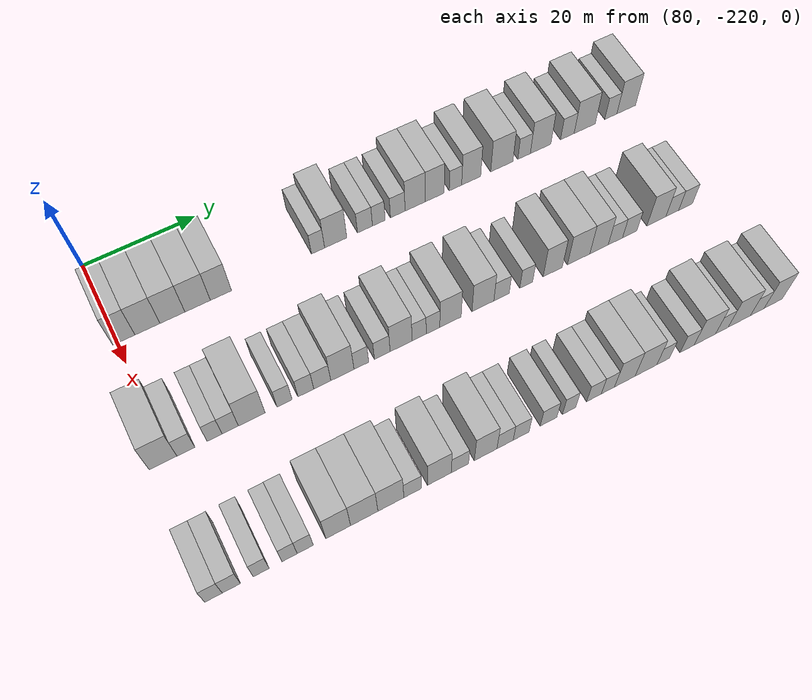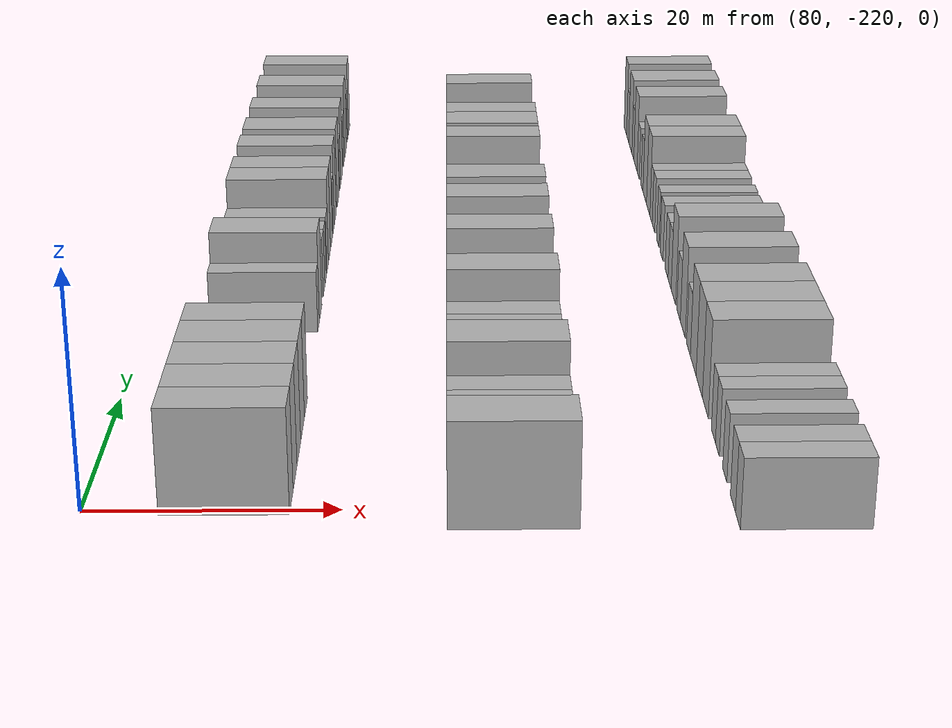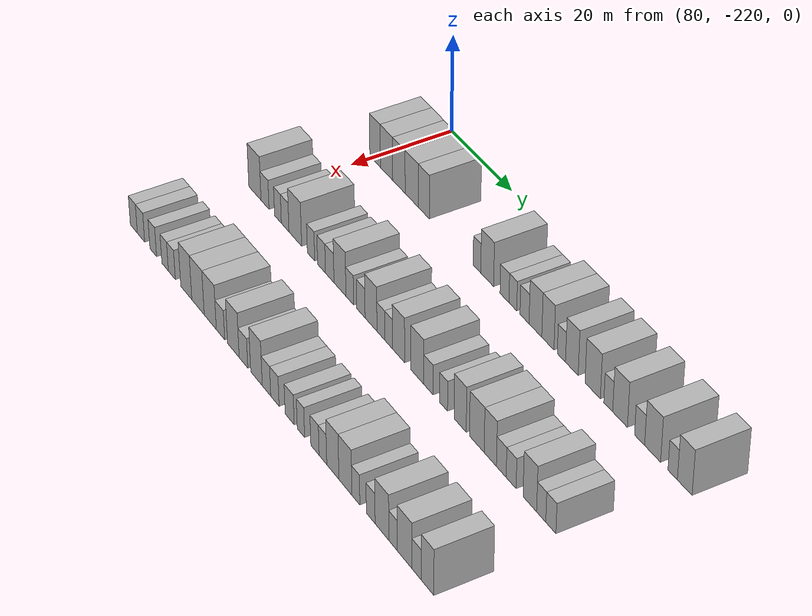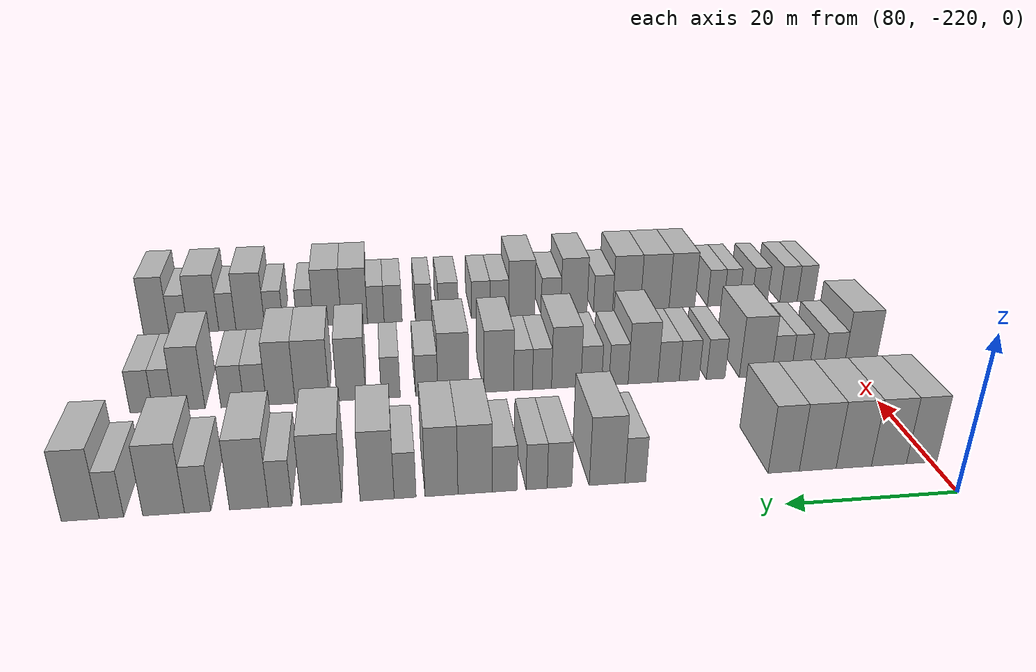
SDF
<sdf version="1.6">
 <world name="default">
  <model name="building_597">
   <static>1</static>
   <pose>91.0000 -218.8001 0 0.000000 0.000000 0.000000</pose>
   <link name="link">
    <pose>0 0 4.50 0 0 0</pose>
    <collision name="collision"><geometry><box><size>10.0000 3.7605 9.0000</size></box></geometry></collision>
    <visual name="visual">
     <cast_shadows>0</cast_shadows>
     <geometry><box><size>10.0000 3.7605 9.0000</size></box></geometry>
     <material>
      <script>
       <uri>model://HANNAS_wall/materials/scripts</uri>
       <uri>model://HANNAS_wall/materials/textures</uri>
       <name>vrc/HANNAS_wall</name>
      </script>
     </material>
    </visual>
   </link>
  </model>
  <model name="building_598">
   <static>1</static>
   <pose>91.0000 -214.7804 0 0.000000 0.000000 0.000000</pose>
   <link name="link">
    <pose>0 0 4.50 0 0 0</pose>
    <collision name="collision"><geometry><box><size>10.0000 4.2788 9.0000</size></box></geometry></collision>
    <visual name="visual">
     <cast_shadows>0</cast_shadows>
     <geometry><box><size>10.0000 4.2788 9.0000</size></box></geometry>
     <material>
      <script>
       <uri>model://HANNAS_wall/materials/scripts</uri>
       <uri>model://HANNAS_wall/materials/textures</uri>
       <name>vrc/HANNAS_wall</name>
      </script>
     </material>
    </visual>
   </link>
  </model>
  <model name="building_599">
   <static>1</static>
   <pose>91.0000 -210.4923 0 0.000000 0.000000 0.000000</pose>
   <link name="link">
    <pose>0 0 4.50 0 0 0</pose>
    <collision name="collision"><geometry><box><size>10.0000 4.2975 9.0000</size></box></geometry></collision>
    <visual name="visual">
     <cast_shadows>0</cast_shadows>
     <geometry><box><size>10.0000 4.2975 9.0000</size></box></geometry>
     <material>
      <script>
       <uri>model://HANNAS_wall/materials/scripts</uri>
       <uri>model://HANNAS_wall/materials/textures</uri>
       <name>vrc/HANNAS_wall</name>
      </script>
     </material>
    </visual>
   </link>
  </model>
  <model name="building_600">
   <static>1</static>
   <pose>91.0000 -206.1221 0 0.000000 0.000000 0.000000</pose>
   <link name="link">
    <pose>0 0 4.50 0 0 0</pose>
    <collision name="collision"><geometry><box><size>10.0000 4.4429 9.0000</size></box></geometry></collision>
    <visual name="visual">
     <cast_shadows>0</cast_shadows>
     <geometry><box><size>10.0000 4.4429 9.0000</size></box></geometry>
     <material>
      <script>
       <uri>model://HANNAS_wall/materials/scripts</uri>
       <uri>model://HANNAS_wall/materials/textures</uri>
       <name>vrc/HANNAS_wall</name>
      </script>
     </material>
    </visual>
   </link>
  </model>
  <model name="building_601">
   <static>1</static>
   <pose>91.0000 -202.0308 0 0.000000 0.000000 0.000000</pose>
   <link name="link">
    <pose>0 0 4.50 0 0 0</pose>
    <collision name="collision"><geometry><box><size>10.0000 3.7395 9.0000</size></box></geometry></collision>
    <visual name="visual">
     <cast_shadows>0</cast_shadows>
     <geometry><box><size>10.0000 3.7395 9.0000</size></box></geometry>
     <material>
      <script>
       <uri>model://HANNAS_wall/materials/scripts</uri>
       <uri>model://HANNAS_wall/materials/textures</uri>
       <name>vrc/HANNAS_wall</name>
      </script>
     </material>
    </visual>
   </link>
  </model>
  <model name="building_602">
   <static>1</static>
   <pose>91.0000 -184.5049 0 0.000000 0.000000 0.000000</pose>
   <link name="link">
    <pose>0 0 3.00 0 0 0</pose>
    <collision name="collision"><geometry><box><size>10.0000 2.4375 6.0000</size></box></geometry></collision>
    <visual name="visual">
     <cast_shadows>0</cast_shadows>
     <geometry><box><size>10.0000 2.4375 6.0000</size></box></geometry>
     <material>
      <script>
       <uri>model://HANNAS_wall/materials/scripts</uri>
       <uri>model://HANNAS_wall/materials/textures</uri>
       <name>vrc/HANNAS_wall</name>
      </script>
     </material>
    </visual>
   </link>
  </model>
  <model name="building_603">
   <static>1</static>
   <pose>91.0000 -181.2316 0 0.000000 0.000000 0.000000</pose>
   <link name="link">
    <pose>0 0 4.50 0 0 0</pose>
    <collision name="collision"><geometry><box><size>10.0000 4.1092 9.0000</size></box></geometry></collision>
    <visual name="visual">
     <cast_shadows>0</cast_shadows>
     <geometry><box><size>10.0000 4.1092 9.0000</size></box></geometry>
     <material>
      <script>
       <uri>model://HANNAS_wall/materials/scripts</uri>
       <uri>model://HANNAS_wall/materials/textures</uri>
       <name>vrc/HANNAS_wall</name>
      </script>
     </material>
    </visual>
   </link>
  </model>
  <model name="building_604">
   <static>1</static>
   <pose>91.0000 -175.7682 0 0.000000 0.000000 0.000000</pose>
   <link name="link">
    <pose>0 0 3.00 0 0 0</pose>
    <collision name="collision"><geometry><box><size>10.0000 2.8176 6.0000</size></box></geometry></collision>
    <visual name="visual">
     <cast_shadows>0</cast_shadows>
     <geometry><box><size>10.0000 2.8176 6.0000</size></box></geometry>
     <material>
      <script>
       <uri>model://HANNAS_wall/materials/scripts</uri>
       <uri>model://HANNAS_wall/materials/textures</uri>
       <name>vrc/HANNAS_wall</name>
      </script>
     </material>
    </visual>
   </link>
  </model>
  <model name="building_605">
   <static>1</static>
   <pose>91.0000 -173.1566 0 0.000000 0.000000 0.000000</pose>
   <link name="link">
    <pose>0 0 3.00 0 0 0</pose>
    <collision name="collision"><geometry><box><size>10.0000 2.4055 6.0000</size></box></geometry></collision>
    <visual name="visual">
     <cast_shadows>0</cast_shadows>
     <geometry><box><size>10.0000 2.4055 6.0000</size></box></geometry>
     <material>
      <script>
       <uri>model://HANNAS_wall/materials/scripts</uri>
       <uri>model://HANNAS_wall/materials/textures</uri>
       <name>vrc/HANNAS_wall</name>
      </script>
     </material>
    </visual>
   </link>
  </model>
  <model name="building_606">
   <static>1</static>
   <pose>91.0000 -169.5501 0 0.000000 0.000000 0.000000</pose>
   <link name="link">
    <pose>0 0 3.00 0 0 0</pose>
    <collision name="collision"><geometry><box><size>10.0000 2.8075 6.0000</size></box></geometry></collision>
    <visual name="visual">
     <cast_shadows>0</cast_shadows>
     <geometry><box><size>10.0000 2.8075 6.0000</size></box></geometry>
     <material>
      <script>
       <uri>model://HANNAS_wall/materials/scripts</uri>
       <uri>model://HANNAS_wall/materials/textures</uri>
       <name>vrc/HANNAS_wall</name>
      </script>
     </material>
    </visual>
   </link>
  </model>
  <model name="building_607">
   <static>1</static>
   <pose>91.0000 -166.2001 0 0.000000 0.000000 0.000000</pose>
   <link name="link">
    <pose>0 0 4.50 0 0 0</pose>
    <collision name="collision"><geometry><box><size>10.0000 3.8927 9.0000</size></box></geometry></collision>
    <visual name="visual">
     <cast_shadows>0</cast_shadows>
     <geometry><box><size>10.0000 3.8927 9.0000</size></box></geometry>
     <material>
      <script>
       <uri>model://HANNAS_wall/materials/scripts</uri>
       <uri>model://HANNAS_wall/materials/textures</uri>
       <name>vrc/HANNAS_wall</name>
      </script>
     </material>
    </visual>
   </link>
  </model>
  <model name="building_608">
   <static>1</static>
   <pose>91.0000 -162.4164 0 0.000000 0.000000 0.000000</pose>
   <link name="link">
    <pose>0 0 4.50 0 0 0</pose>
    <collision name="collision"><geometry><box><size>10.0000 3.6747 9.0000</size></box></geometry></collision>
    <visual name="visual">
     <cast_shadows>0</cast_shadows>
     <geometry><box><size>10.0000 3.6747 9.0000</size></box></geometry>
     <material>
      <script>
       <uri>model://HANNAS_wall/materials/scripts</uri>
       <uri>model://HANNAS_wall/materials/textures</uri>
       <name>vrc/HANNAS_wall</name>
      </script>
     </material>
    </visual>
   </link>
  </model>
  <model name="building_609">
   <static>1</static>
   <pose>91.0000 -158.3615 0 0.000000 0.000000 0.000000</pose>
   <link name="link">
    <pose>0 0 3.00 0 0 0</pose>
    <collision name="collision"><geometry><box><size>10.0000 2.4351 6.0000</size></box></geometry></collision>
    <visual name="visual">
     <cast_shadows>0</cast_shadows>
     <geometry><box><size>10.0000 2.4351 6.0000</size></box></geometry>
     <material>
      <script>
       <uri>model://HANNAS_wall/materials/scripts</uri>
       <uri>model://HANNAS_wall/materials/textures</uri>
       <name>vrc/HANNAS_wall</name>
      </script>
     </material>
    </visual>
   </link>
  </model>
  <model name="building_610">
   <static>1</static>
   <pose>91.0000 -155.2636 0 0.000000 0.000000 0.000000</pose>
   <link name="link">
    <pose>0 0 4.50 0 0 0</pose>
    <collision name="collision"><geometry><box><size>10.0000 3.7607 9.0000</size></box></geometry></collision>
    <visual name="visual">
     <cast_shadows>0</cast_shadows>
     <geometry><box><size>10.0000 3.7607 9.0000</size></box></geometry>
     <material>
      <script>
       <uri>model://HANNAS_wall/materials/scripts</uri>
       <uri>model://HANNAS_wall/materials/textures</uri>
       <name>vrc/HANNAS_wall</name>
      </script>
     </material>
    </visual>
   </link>
  </model>
  <model name="building_611">
   <static>1</static>
   <pose>91.0000 -149.1546 0 0.000000 0.000000 0.000000</pose>
   <link name="link">
    <pose>0 0 4.50 0 0 0</pose>
    <collision name="collision"><geometry><box><size>10.0000 4.4574 9.0000</size></box></geometry></collision>
    <visual name="visual">
     <cast_shadows>0</cast_shadows>
     <geometry><box><size>10.0000 4.4574 9.0000</size></box></geometry>
     <material>
      <script>
       <uri>model://HANNAS_wall/materials/scripts</uri>
       <uri>model://HANNAS_wall/materials/textures</uri>
       <name>vrc/HANNAS_wall</name>
      </script>
     </material>
    </visual>
   </link>
  </model>
  <model name="building_612">
   <static>1</static>
   <pose>91.0000 -144.6528 0 0.000000 0.000000 0.000000</pose>
   <link name="link">
    <pose>0 0 3.00 0 0 0</pose>
    <collision name="collision"><geometry><box><size>10.0000 2.5461 6.0000</size></box></geometry></collision>
    <visual name="visual">
     <cast_shadows>0</cast_shadows>
     <geometry><box><size>10.0000 2.5461 6.0000</size></box></geometry>
     <material>
      <script>
       <uri>model://HANNAS_wall/materials/scripts</uri>
       <uri>model://HANNAS_wall/materials/textures</uri>
       <name>vrc/HANNAS_wall</name>
      </script>
     </material>
    </visual>
   </link>
  </model>
  <model name="building_613">
   <static>1</static>
   <pose>91.0000 -141.2833 0 0.000000 0.000000 0.000000</pose>
   <link name="link">
    <pose>0 0 4.50 0 0 0</pose>
    <collision name="collision"><geometry><box><size>10.0000 4.1930 9.0000</size></box></geometry></collision>
    <visual name="visual">
     <cast_shadows>0</cast_shadows>
     <geometry><box><size>10.0000 4.1930 9.0000</size></box></geometry>
     <material>
      <script>
       <uri>model://HANNAS_wall/materials/scripts</uri>
       <uri>model://HANNAS_wall/materials/textures</uri>
       <name>vrc/HANNAS_wall</name>
      </script>
     </material>
    </visual>
   </link>
  </model>
  <model name="building_614">
   <static>1</static>
   <pose>91.0000 -135.7788 0 0.000000 0.000000 0.000000</pose>
   <link name="link">
    <pose>0 0 3.00 0 0 0</pose>
    <collision name="collision"><geometry><box><size>10.0000 2.8159 6.0000</size></box></geometry></collision>
    <visual name="visual">
     <cast_shadows>0</cast_shadows>
     <geometry><box><size>10.0000 2.8159 6.0000</size></box></geometry>
     <material>
      <script>
       <uri>model://HANNAS_wall/materials/scripts</uri>
       <uri>model://HANNAS_wall/materials/textures</uri>
       <name>vrc/HANNAS_wall</name>
      </script>
     </material>
    </visual>
   </link>
  </model>
  <model name="building_615">
   <static>1</static>
   <pose>91.0000 -132.1601 0 0.000000 0.000000 0.000000</pose>
   <link name="link">
    <pose>0 0 4.50 0 0 0</pose>
    <collision name="collision"><geometry><box><size>10.0000 4.4215 9.0000</size></box></geometry></collision>
    <visual name="visual">
     <cast_shadows>0</cast_shadows>
     <geometry><box><size>10.0000 4.4215 9.0000</size></box></geometry>
     <material>
      <script>
       <uri>model://HANNAS_wall/materials/scripts</uri>
       <uri>model://HANNAS_wall/materials/textures</uri>
       <name>vrc/HANNAS_wall</name>
      </script>
     </material>
    </visual>
   </link>
  </model>
  <model name="building_616">
   <static>1</static>
   <pose>91.0000 -126.6657 0 0.000000 0.000000 0.000000</pose>
   <link name="link">
    <pose>0 0 3.00 0 0 0</pose>
    <collision name="collision"><geometry><box><size>10.0000 2.5673 6.0000</size></box></geometry></collision>
    <visual name="visual">
     <cast_shadows>0</cast_shadows>
     <geometry><box><size>10.0000 2.5673 6.0000</size></box></geometry>
     <material>
      <script>
       <uri>model://HANNAS_wall/materials/scripts</uri>
       <uri>model://HANNAS_wall/materials/textures</uri>
       <name>vrc/HANNAS_wall</name>
      </script>
     </material>
    </visual>
   </link>
  </model>
  <model name="building_617">
   <static>1</static>
   <pose>91.0000 -123.3949 0 0.000000 0.000000 0.000000</pose>
   <link name="link">
    <pose>0 0 4.50 0 0 0</pose>
    <collision name="collision"><geometry><box><size>10.0000 3.9744 9.0000</size></box></geometry></collision>
    <visual name="visual">
     <cast_shadows>0</cast_shadows>
     <geometry><box><size>10.0000 3.9744 9.0000</size></box></geometry>
     <material>
      <script>
       <uri>model://HANNAS_wall/materials/scripts</uri>
       <uri>model://HANNAS_wall/materials/textures</uri>
       <name>vrc/HANNAS_wall</name>
      </script>
     </material>
    </visual>
   </link>
  </model>
  <model name="building_782">
   <static>1</static>
   <pose>113.0000 -220.9377 0 0.000000 0.000000 0.000000</pose>
   <link name="link">
    <pose>0 0 4.50 0 0 0</pose>
    <collision name="collision"><geometry><box><size>10.0000 4.4725 9.0000</size></box></geometry></collision>
    <visual name="visual">
     <cast_shadows>0</cast_shadows>
     <geometry><box><size>10.0000 4.4725 9.0000</size></box></geometry>
     <material>
      <script>
       <uri>model://HANNAS_wall/materials/scripts</uri>
       <uri>model://HANNAS_wall/materials/textures</uri>
       <name>vrc/HANNAS_wall</name>
      </script>
     </material>
    </visual>
   </link>
  </model>
  <model name="building_783">
   <static>1</static>
   <pose>113.0000 -217.2346 0 0.000000 0.000000 0.000000</pose>
   <link name="link">
    <pose>0 0 3.00 0 0 0</pose>
    <collision name="collision"><geometry><box><size>10.0000 2.9338 6.0000</size></box></geometry></collision>
    <visual name="visual">
     <cast_shadows>0</cast_shadows>
     <geometry><box><size>10.0000 2.9338 6.0000</size></box></geometry>
     <material>
      <script>
       <uri>model://HANNAS_wall/materials/scripts</uri>
       <uri>model://HANNAS_wall/materials/textures</uri>
       <name>vrc/HANNAS_wall</name>
      </script>
     </material>
    </visual>
   </link>
  </model>
  <model name="building_784">
   <static>1</static>
   <pose>113.0000 -212.5410 0 0.000000 0.000000 0.000000</pose>
   <link name="link">
    <pose>0 0 3.00 0 0 0</pose>
    <collision name="collision"><geometry><box><size>10.0000 2.4534 6.0000</size></box></geometry></collision>
    <visual name="visual">
     <cast_shadows>0</cast_shadows>
     <geometry><box><size>10.0000 2.4534 6.0000</size></box></geometry>
     <material>
      <script>
       <uri>model://HANNAS_wall/materials/scripts</uri>
       <uri>model://HANNAS_wall/materials/textures</uri>
       <name>vrc/HANNAS_wall</name>
      </script>
     </material>
    </visual>
   </link>
  </model>
  <model name="building_785">
   <static>1</static>
   <pose>113.0000 -209.9526 0 0.000000 0.000000 0.000000</pose>
   <link name="link">
    <pose>0 0 3.00 0 0 0</pose>
    <collision name="collision"><geometry><box><size>10.0000 2.7233 6.0000</size></box></geometry></collision>
    <visual name="visual">
     <cast_shadows>0</cast_shadows>
     <geometry><box><size>10.0000 2.7233 6.0000</size></box></geometry>
     <material>
      <script>
       <uri>model://HANNAS_wall/materials/scripts</uri>
       <uri>model://HANNAS_wall/materials/textures</uri>
       <name>vrc/HANNAS_wall</name>
      </script>
     </material>
    </visual>
   </link>
  </model>
  <model name="building_786">
   <static>1</static>
   <pose>113.0000 -206.3439 0 0.000000 0.000000 0.000000</pose>
   <link name="link">
    <pose>0 0 4.50 0 0 0</pose>
    <collision name="collision"><geometry><box><size>10.0000 4.4943 9.0000</size></box></geometry></collision>
    <visual name="visual">
     <cast_shadows>0</cast_shadows>
     <geometry><box><size>10.0000 4.4943 9.0000</size></box></geometry>
     <material>
      <script>
       <uri>model://HANNAS_wall/materials/scripts</uri>
       <uri>model://HANNAS_wall/materials/textures</uri>
       <name>vrc/HANNAS_wall</name>
      </script>
     </material>
    </visual>
   </link>
  </model>
  <model name="building_787">
   <static>1</static>
   <pose>113.0000 -200.8114 0 0.000000 0.000000 0.000000</pose>
   <link name="link">
    <pose>0 0 3.00 0 0 0</pose>
    <collision name="collision"><geometry><box><size>10.0000 2.5706 6.0000</size></box></geometry></collision>
    <visual name="visual">
     <cast_shadows>0</cast_shadows>
     <geometry><box><size>10.0000 2.5706 6.0000</size></box></geometry>
     <material>
      <script>
       <uri>model://HANNAS_wall/materials/scripts</uri>
       <uri>model://HANNAS_wall/materials/textures</uri>
       <name>vrc/HANNAS_wall</name>
      </script>
     </material>
    </visual>
   </link>
  </model>
  <model name="building_788">
   <static>1</static>
   <pose>113.0000 -197.1657 0 0.000000 0.000000 0.000000</pose>
   <link name="link">
    <pose>0 0 3.00 0 0 0</pose>
    <collision name="collision"><geometry><box><size>10.0000 2.7208 6.0000</size></box></geometry></collision>
    <visual name="visual">
     <cast_shadows>0</cast_shadows>
     <geometry><box><size>10.0000 2.7208 6.0000</size></box></geometry>
     <material>
      <script>
       <uri>model://HANNAS_wall/materials/scripts</uri>
       <uri>model://HANNAS_wall/materials/textures</uri>
       <name>vrc/HANNAS_wall</name>
      </script>
     </material>
    </visual>
   </link>
  </model>
  <model name="building_789">
   <static>1</static>
   <pose>113.0000 -194.3358 0 0.000000 0.000000 0.000000</pose>
   <link name="link">
    <pose>0 0 3.00 0 0 0</pose>
    <collision name="collision"><geometry><box><size>10.0000 2.9390 6.0000</size></box></geometry></collision>
    <visual name="visual">
     <cast_shadows>0</cast_shadows>
     <geometry><box><size>10.0000 2.9390 6.0000</size></box></geometry>
     <material>
      <script>
       <uri>model://HANNAS_wall/materials/scripts</uri>
       <uri>model://HANNAS_wall/materials/textures</uri>
       <name>vrc/HANNAS_wall</name>
      </script>
     </material>
    </visual>
   </link>
  </model>
  <model name="building_790">
   <static>1</static>
   <pose>113.0000 -190.8423 0 0.000000 0.000000 0.000000</pose>
   <link name="link">
    <pose>0 0 4.50 0 0 0</pose>
    <collision name="collision"><geometry><box><size>10.0000 4.0480 9.0000</size></box></geometry></collision>
    <visual name="visual">
     <cast_shadows>0</cast_shadows>
     <geometry><box><size>10.0000 4.0480 9.0000</size></box></geometry>
     <material>
      <script>
       <uri>model://HANNAS_wall/materials/scripts</uri>
       <uri>model://HANNAS_wall/materials/textures</uri>
       <name>vrc/HANNAS_wall</name>
      </script>
     </material>
    </visual>
   </link>
  </model>
  <model name="building_791">
   <static>1</static>
   <pose>113.0000 -187.5196 0 0.000000 0.000000 0.000000</pose>
   <link name="link">
    <pose>0 0 3.00 0 0 0</pose>
    <collision name="collision"><geometry><box><size>10.0000 2.5975 6.0000</size></box></geometry></collision>
    <visual name="visual">
     <cast_shadows>0</cast_shadows>
     <geometry><box><size>10.0000 2.5975 6.0000</size></box></geometry>
     <material>
      <script>
       <uri>model://HANNAS_wall/materials/scripts</uri>
       <uri>model://HANNAS_wall/materials/textures</uri>
       <name>vrc/HANNAS_wall</name>
      </script>
     </material>
    </visual>
   </link>
  </model>
  <model name="building_792">
   <static>1</static>
   <pose>113.0000 -183.8251 0 0.000000 0.000000 0.000000</pose>
   <link name="link">
    <pose>0 0 3.00 0 0 0</pose>
    <collision name="collision"><geometry><box><size>10.0000 2.7914 6.0000</size></box></geometry></collision>
    <visual name="visual">
     <cast_shadows>0</cast_shadows>
     <geometry><box><size>10.0000 2.7914 6.0000</size></box></geometry>
     <material>
      <script>
       <uri>model://HANNAS_wall/materials/scripts</uri>
       <uri>model://HANNAS_wall/materials/textures</uri>
       <name>vrc/HANNAS_wall</name>
      </script>
     </material>
    </visual>
   </link>
  </model>
  <model name="building_793">
   <static>1</static>
   <pose>113.0000 -180.4602 0 0.000000 0.000000 0.000000</pose>
   <link name="link">
    <pose>0 0 4.50 0 0 0</pose>
    <collision name="collision"><geometry><box><size>10.0000 3.9384 9.0000</size></box></geometry></collision>
    <visual name="visual">
     <cast_shadows>0</cast_shadows>
     <geometry><box><size>10.0000 3.9384 9.0000</size></box></geometry>
     <material>
      <script>
       <uri>model://HANNAS_wall/materials/scripts</uri>
       <uri>model://HANNAS_wall/materials/textures</uri>
       <name>vrc/HANNAS_wall</name>
      </script>
     </material>
    </visual>
   </link>
  </model>
  <model name="building_794">
   <static>1</static>
   <pose>113.0000 -177.2183 0 0.000000 0.000000 0.000000</pose>
   <link name="link">
    <pose>0 0 3.00 0 0 0</pose>
    <collision name="collision"><geometry><box><size>10.0000 2.5454 6.0000</size></box></geometry></collision>
    <visual name="visual">
     <cast_shadows>0</cast_shadows>
     <geometry><box><size>10.0000 2.5454 6.0000</size></box></geometry>
     <material>
      <script>
       <uri>model://HANNAS_wall/materials/scripts</uri>
       <uri>model://HANNAS_wall/materials/textures</uri>
       <name>vrc/HANNAS_wall</name>
      </script>
     </material>
    </visual>
   </link>
  </model>
  <model name="building_795">
   <static>1</static>
   <pose>113.0000 -174.7041 0 0.000000 0.000000 0.000000</pose>
   <link name="link">
    <pose>0 0 3.00 0 0 0</pose>
    <collision name="collision"><geometry><box><size>10.0000 2.4831 6.0000</size></box></geometry></collision>
    <visual name="visual">
     <cast_shadows>0</cast_shadows>
     <geometry><box><size>10.0000 2.4831 6.0000</size></box></geometry>
     <material>
      <script>
       <uri>model://HANNAS_wall/materials/scripts</uri>
       <uri>model://HANNAS_wall/materials/textures</uri>
       <name>vrc/HANNAS_wall</name>
      </script>
     </material>
    </visual>
   </link>
  </model>
  <model name="building_796">
   <static>1</static>
   <pose>113.0000 -171.5022 0 0.000000 0.000000 0.000000</pose>
   <link name="link">
    <pose>0 0 4.50 0 0 0</pose>
    <collision name="collision"><geometry><box><size>10.0000 3.9207 9.0000</size></box></geometry></collision>
    <visual name="visual">
     <cast_shadows>0</cast_shadows>
     <geometry><box><size>10.0000 3.9207 9.0000</size></box></geometry>
     <material>
      <script>
       <uri>model://HANNAS_wall/materials/scripts</uri>
       <uri>model://HANNAS_wall/materials/textures</uri>
       <name>vrc/HANNAS_wall</name>
      </script>
     </material>
    </visual>
   </link>
  </model>
  <model name="building_797">
   <static>1</static>
   <pose>113.0000 -165.4991 0 0.000000 0.000000 0.000000</pose>
   <link name="link">
    <pose>0 0 4.50 0 0 0</pose>
    <collision name="collision"><geometry><box><size>10.0000 4.0855 9.0000</size></box></geometry></collision>
    <visual name="visual">
     <cast_shadows>0</cast_shadows>
     <geometry><box><size>10.0000 4.0855 9.0000</size></box></geometry>
     <material>
      <script>
       <uri>model://HANNAS_wall/materials/scripts</uri>
       <uri>model://HANNAS_wall/materials/textures</uri>
       <name>vrc/HANNAS_wall</name>
      </script>
     </material>
    </visual>
   </link>
  </model>
  <model name="building_798">
   <static>1</static>
   <pose>113.0000 -162.0102 0 0.000000 0.000000 0.000000</pose>
   <link name="link">
    <pose>0 0 3.00 0 0 0</pose>
    <collision name="collision"><geometry><box><size>10.0000 2.8923 6.0000</size></box></geometry></collision>
    <visual name="visual">
     <cast_shadows>0</cast_shadows>
     <geometry><box><size>10.0000 2.8923 6.0000</size></box></geometry>
     <material>
      <script>
       <uri>model://HANNAS_wall/materials/scripts</uri>
       <uri>model://HANNAS_wall/materials/textures</uri>
       <name>vrc/HANNAS_wall</name>
      </script>
     </material>
    </visual>
   </link>
  </model>
  <model name="building_799">
   <static>1</static>
   <pose>113.0000 -157.3421 0 0.000000 0.000000 0.000000</pose>
   <link name="link">
    <pose>0 0 3.00 0 0 0</pose>
    <collision name="collision"><geometry><box><size>10.0000 2.4440 6.0000</size></box></geometry></collision>
    <visual name="visual">
     <cast_shadows>0</cast_shadows>
     <geometry><box><size>10.0000 2.4440 6.0000</size></box></geometry>
     <material>
      <script>
       <uri>model://HANNAS_wall/materials/scripts</uri>
       <uri>model://HANNAS_wall/materials/textures</uri>
       <name>vrc/HANNAS_wall</name>
      </script>
     </material>
    </visual>
   </link>
  </model>
  <model name="building_800">
   <static>1</static>
   <pose>113.0000 -152.2723 0 0.000000 0.000000 0.000000</pose>
   <link name="link">
    <pose>0 0 4.50 0 0 0</pose>
    <collision name="collision"><geometry><box><size>10.0000 3.6954 9.0000</size></box></geometry></collision>
    <visual name="visual">
     <cast_shadows>0</cast_shadows>
     <geometry><box><size>10.0000 3.6954 9.0000</size></box></geometry>
     <material>
      <script>
       <uri>model://HANNAS_wall/materials/scripts</uri>
       <uri>model://HANNAS_wall/materials/textures</uri>
       <name>vrc/HANNAS_wall</name>
      </script>
     </material>
    </visual>
   </link>
  </model>
  <model name="building_801">
   <static>1</static>
   <pose>113.0000 -147.2356 0 0.000000 0.000000 0.000000</pose>
   <link name="link">
    <pose>0 0 4.50 0 0 0</pose>
    <collision name="collision"><geometry><box><size>10.0000 4.3780 9.0000</size></box></geometry></collision>
    <visual name="visual">
     <cast_shadows>0</cast_shadows>
     <geometry><box><size>10.0000 4.3780 9.0000</size></box></geometry>
     <material>
      <script>
       <uri>model://HANNAS_wall/materials/scripts</uri>
       <uri>model://HANNAS_wall/materials/textures</uri>
       <name>vrc/HANNAS_wall</name>
      </script>
     </material>
    </visual>
   </link>
  </model>
  <model name="building_802">
   <static>1</static>
   <pose>113.0000 -143.2328 0 0.000000 0.000000 0.000000</pose>
   <link name="link">
    <pose>0 0 4.50 0 0 0</pose>
    <collision name="collision"><geometry><box><size>10.0000 3.6276 9.0000</size></box></geometry></collision>
    <visual name="visual">
     <cast_shadows>0</cast_shadows>
     <geometry><box><size>10.0000 3.6276 9.0000</size></box></geometry>
     <material>
      <script>
       <uri>model://HANNAS_wall/materials/scripts</uri>
       <uri>model://HANNAS_wall/materials/textures</uri>
       <name>vrc/HANNAS_wall</name>
      </script>
     </material>
    </visual>
   </link>
  </model>
  <model name="building_803">
   <static>1</static>
   <pose>113.0000 -139.9974 0 0.000000 0.000000 0.000000</pose>
   <link name="link">
    <pose>0 0 3.00 0 0 0</pose>
    <collision name="collision"><geometry><box><size>10.0000 2.8433 6.0000</size></box></geometry></collision>
    <visual name="visual">
     <cast_shadows>0</cast_shadows>
     <geometry><box><size>10.0000 2.8433 6.0000</size></box></geometry>
     <material>
      <script>
       <uri>model://HANNAS_wall/materials/scripts</uri>
       <uri>model://HANNAS_wall/materials/textures</uri>
       <name>vrc/HANNAS_wall</name>
      </script>
     </material>
    </visual>
   </link>
  </model>
  <model name="building_804">
   <static>1</static>
   <pose>113.0000 -137.1305 0 0.000000 0.000000 0.000000</pose>
   <link name="link">
    <pose>0 0 3.00 0 0 0</pose>
    <collision name="collision"><geometry><box><size>10.0000 2.8905 6.0000</size></box></geometry></collision>
    <visual name="visual">
     <cast_shadows>0</cast_shadows>
     <geometry><box><size>10.0000 2.8905 6.0000</size></box></geometry>
     <material>
      <script>
       <uri>model://HANNAS_wall/materials/scripts</uri>
       <uri>model://HANNAS_wall/materials/textures</uri>
       <name>vrc/HANNAS_wall</name>
      </script>
     </material>
    </visual>
   </link>
  </model>
  <model name="building_805">
   <static>1</static>
   <pose>113.0000 -131.7530 0 0.000000 0.000000 0.000000</pose>
   <link name="link">
    <pose>0 0 4.50 0 0 0</pose>
    <collision name="collision"><geometry><box><size>10.0000 3.8644 9.0000</size></box></geometry></collision>
    <visual name="visual">
     <cast_shadows>0</cast_shadows>
     <geometry><box><size>10.0000 3.8644 9.0000</size></box></geometry>
     <material>
      <script>
       <uri>model://HANNAS_wall/materials/scripts</uri>
       <uri>model://HANNAS_wall/materials/textures</uri>
       <name>vrc/HANNAS_wall</name>
      </script>
     </material>
    </visual>
   </link>
  </model>
  <model name="building_806">
   <static>1</static>
   <pose>113.0000 -128.5218 0 0.000000 0.000000 0.000000</pose>
   <link name="link">
    <pose>0 0 3.00 0 0 0</pose>
    <collision name="collision"><geometry><box><size>10.0000 2.5981 6.0000</size></box></geometry></collision>
    <visual name="visual">
     <cast_shadows>0</cast_shadows>
     <geometry><box><size>10.0000 2.5981 6.0000</size></box></geometry>
     <material>
      <script>
       <uri>model://HANNAS_wall/materials/scripts</uri>
       <uri>model://HANNAS_wall/materials/textures</uri>
       <name>vrc/HANNAS_wall</name>
      </script>
     </material>
    </visual>
   </link>
  </model>
  <model name="building_807">
   <static>1</static>
   <pose>113.0000 -125.7999 0 0.000000 0.000000 0.000000</pose>
   <link name="link">
    <pose>0 0 3.00 0 0 0</pose>
    <collision name="collision"><geometry><box><size>10.0000 2.8458 6.0000</size></box></geometry></collision>
    <visual name="visual">
     <cast_shadows>0</cast_shadows>
     <geometry><box><size>10.0000 2.8458 6.0000</size></box></geometry>
     <material>
      <script>
       <uri>model://HANNAS_wall/materials/scripts</uri>
       <uri>model://HANNAS_wall/materials/textures</uri>
       <name>vrc/HANNAS_wall</name>
      </script>
     </material>
    </visual>
   </link>
  </model>
  <model name="building_967">
   <static>1</static>
   <pose>135.0000 -222.0774 0 0.000000 0.000000 0.000000</pose>
   <link name="link">
    <pose>0 0 3.00 0 0 0</pose>
    <collision name="collision"><geometry><box><size>10.0000 2.6899 6.0000</size></box></geometry></collision>
    <visual name="visual">
     <cast_shadows>0</cast_shadows>
     <geometry><box><size>10.0000 2.6899 6.0000</size></box></geometry>
     <material>
      <script>
       <uri>model://HANNAS_wall/materials/scripts</uri>
       <uri>model://HANNAS_wall/materials/textures</uri>
       <name>vrc/HANNAS_wall</name>
      </script>
     </material>
    </visual>
   </link>
  </model>
  <model name="building_968">
   <static>1</static>
   <pose>135.0000 -219.3258 0 0.000000 0.000000 0.000000</pose>
   <link name="link">
    <pose>0 0 3.00 0 0 0</pose>
    <collision name="collision"><geometry><box><size>10.0000 2.8134 6.0000</size></box></geometry></collision>
    <visual name="visual">
     <cast_shadows>0</cast_shadows>
     <geometry><box><size>10.0000 2.8134 6.0000</size></box></geometry>
     <material>
      <script>
       <uri>model://HANNAS_wall/materials/scripts</uri>
       <uri>model://HANNAS_wall/materials/textures</uri>
       <name>vrc/HANNAS_wall</name>
      </script>
     </material>
    </visual>
   </link>
  </model>
  <model name="building_969">
   <static>1</static>
   <pose>135.0000 -214.6667 0 0.000000 0.000000 0.000000</pose>
   <link name="link">
    <pose>0 0 3.00 0 0 0</pose>
    <collision name="collision"><geometry><box><size>10.0000 2.5046 6.0000</size></box></geometry></collision>
    <visual name="visual">
     <cast_shadows>0</cast_shadows>
     <geometry><box><size>10.0000 2.5046 6.0000</size></box></geometry>
     <material>
      <script>
       <uri>model://HANNAS_wall/materials/scripts</uri>
       <uri>model://HANNAS_wall/materials/textures</uri>
       <name>vrc/HANNAS_wall</name>
      </script>
     </material>
    </visual>
   </link>
  </model>
  <model name="building_970">
   <static>1</static>
   <pose>135.0000 -210.1974 0 0.000000 0.000000 0.000000</pose>
   <link name="link">
    <pose>0 0 3.00 0 0 0</pose>
    <collision name="collision"><geometry><box><size>10.0000 2.4340 6.0000</size></box></geometry></collision>
    <visual name="visual">
     <cast_shadows>0</cast_shadows>
     <geometry><box><size>10.0000 2.4340 6.0000</size></box></geometry>
     <material>
      <script>
       <uri>model://HANNAS_wall/materials/scripts</uri>
       <uri>model://HANNAS_wall/materials/textures</uri>
       <name>vrc/HANNAS_wall</name>
      </script>
     </material>
    </visual>
   </link>
  </model>
  <model name="building_971">
   <static>1</static>
   <pose>135.0000 -207.6898 0 0.000000 0.000000 0.000000</pose>
   <link name="link">
    <pose>0 0 3.00 0 0 0</pose>
    <collision name="collision"><geometry><box><size>10.0000 2.5814 6.0000</size></box></geometry></collision>
    <visual name="visual">
     <cast_shadows>0</cast_shadows>
     <geometry><box><size>10.0000 2.5814 6.0000</size></box></geometry>
     <material>
      <script>
       <uri>model://HANNAS_wall/materials/scripts</uri>
       <uri>model://HANNAS_wall/materials/textures</uri>
       <name>vrc/HANNAS_wall</name>
      </script>
     </material>
    </visual>
   </link>
  </model>
  <model name="building_972">
   <static>1</static>
   <pose>135.0000 -202.3773 0 0.000000 0.000000 0.000000</pose>
   <link name="link">
    <pose>0 0 4.50 0 0 0</pose>
    <collision name="collision"><geometry><box><size>10.0000 4.0435 9.0000</size></box></geometry></collision>
    <visual name="visual">
     <cast_shadows>0</cast_shadows>
     <geometry><box><size>10.0000 4.0435 9.0000</size></box></geometry>
     <material>
      <script>
       <uri>model://HANNAS_wall/materials/scripts</uri>
       <uri>model://HANNAS_wall/materials/textures</uri>
       <name>vrc/HANNAS_wall</name>
      </script>
     </material>
    </visual>
   </link>
  </model>
  <model name="building_973">
   <static>1</static>
   <pose>135.0000 -198.1146 0 0.000000 0.000000 0.000000</pose>
   <link name="link">
    <pose>0 0 4.50 0 0 0</pose>
    <collision name="collision"><geometry><box><size>10.0000 4.4820 9.0000</size></box></geometry></collision>
    <visual name="visual">
     <cast_shadows>0</cast_shadows>
     <geometry><box><size>10.0000 4.4820 9.0000</size></box></geometry>
     <material>
      <script>
       <uri>model://HANNAS_wall/materials/scripts</uri>
       <uri>model://HANNAS_wall/materials/textures</uri>
       <name>vrc/HANNAS_wall</name>
      </script>
     </material>
    </visual>
   </link>
  </model>
  <model name="building_974">
   <static>1</static>
   <pose>135.0000 -193.7147 0 0.000000 0.000000 0.000000</pose>
   <link name="link">
    <pose>0 0 4.50 0 0 0</pose>
    <collision name="collision"><geometry><box><size>10.0000 4.3178 9.0000</size></box></geometry></collision>
    <visual name="visual">
     <cast_shadows>0</cast_shadows>
     <geometry><box><size>10.0000 4.3178 9.0000</size></box></geometry>
     <material>
      <script>
       <uri>model://HANNAS_wall/materials/scripts</uri>
       <uri>model://HANNAS_wall/materials/textures</uri>
       <name>vrc/HANNAS_wall</name>
      </script>
     </material>
    </visual>
   </link>
  </model>
  <model name="building_975">
   <static>1</static>
   <pose>135.0000 -190.0713 0 0.000000 0.000000 0.000000</pose>
   <link name="link">
    <pose>0 0 3.00 0 0 0</pose>
    <collision name="collision"><geometry><box><size>10.0000 2.9689 6.0000</size></box></geometry></collision>
    <visual name="visual">
     <cast_shadows>0</cast_shadows>
     <geometry><box><size>10.0000 2.9689 6.0000</size></box></geometry>
     <material>
      <script>
       <uri>model://HANNAS_wall/materials/scripts</uri>
       <uri>model://HANNAS_wall/materials/textures</uri>
       <name>vrc/HANNAS_wall</name>
      </script>
     </material>
    </visual>
   </link>
  </model>
  <model name="building_976">
   <static>1</static>
   <pose>135.0000 -185.5662 0 0.000000 0.000000 0.000000</pose>
   <link name="link">
    <pose>0 0 4.50 0 0 0</pose>
    <collision name="collision"><geometry><box><size>10.0000 4.0414 9.0000</size></box></geometry></collision>
    <visual name="visual">
     <cast_shadows>0</cast_shadows>
     <geometry><box><size>10.0000 4.0414 9.0000</size></box></geometry>
     <material>
      <script>
       <uri>model://HANNAS_wall/materials/scripts</uri>
       <uri>model://HANNAS_wall/materials/textures</uri>
       <name>vrc/HANNAS_wall</name>
      </script>
     </material>
    </visual>
   </link>
  </model>
  <model name="building_977">
   <static>1</static>
   <pose>135.0000 -182.0536 0 0.000000 0.000000 0.000000</pose>
   <link name="link">
    <pose>0 0 3.00 0 0 0</pose>
    <collision name="collision"><geometry><box><size>10.0000 2.9837 6.0000</size></box></geometry></collision>
    <visual name="visual">
     <cast_shadows>0</cast_shadows>
     <geometry><box><size>10.0000 2.9837 6.0000</size></box></geometry>
     <material>
      <script>
       <uri>model://HANNAS_wall/materials/scripts</uri>
       <uri>model://HANNAS_wall/materials/textures</uri>
       <name>vrc/HANNAS_wall</name>
      </script>
     </material>
    </visual>
   </link>
  </model>
  <model name="building_978">
   <static>1</static>
   <pose>135.0000 -177.5915 0 0.000000 0.000000 0.000000</pose>
   <link name="link">
    <pose>0 0 4.50 0 0 0</pose>
    <collision name="collision"><geometry><box><size>10.0000 3.9403 9.0000</size></box></geometry></collision>
    <visual name="visual">
     <cast_shadows>0</cast_shadows>
     <geometry><box><size>10.0000 3.9403 9.0000</size></box></geometry>
     <material>
      <script>
       <uri>model://HANNAS_wall/materials/scripts</uri>
       <uri>model://HANNAS_wall/materials/textures</uri>
       <name>vrc/HANNAS_wall</name>
      </script>
     </material>
    </visual>
   </link>
  </model>
  <model name="building_979">
   <static>1</static>
   <pose>135.0000 -174.1982 0 0.000000 0.000000 0.000000</pose>
   <link name="link">
    <pose>0 0 3.00 0 0 0</pose>
    <collision name="collision"><geometry><box><size>10.0000 2.8464 6.0000</size></box></geometry></collision>
    <visual name="visual">
     <cast_shadows>0</cast_shadows>
     <geometry><box><size>10.0000 2.8464 6.0000</size></box></geometry>
     <material>
      <script>
       <uri>model://HANNAS_wall/materials/scripts</uri>
       <uri>model://HANNAS_wall/materials/textures</uri>
       <name>vrc/HANNAS_wall</name>
      </script>
     </material>
    </visual>
   </link>
  </model>
  <model name="building_980">
   <static>1</static>
   <pose>135.0000 -171.3728 0 0.000000 0.000000 0.000000</pose>
   <link name="link">
    <pose>0 0 3.00 0 0 0</pose>
    <collision name="collision"><geometry><box><size>10.0000 2.8045 6.0000</size></box></geometry></collision>
    <visual name="visual">
     <cast_shadows>0</cast_shadows>
     <geometry><box><size>10.0000 2.8045 6.0000</size></box></geometry>
     <material>
      <script>
       <uri>model://HANNAS_wall/materials/scripts</uri>
       <uri>model://HANNAS_wall/materials/textures</uri>
       <name>vrc/HANNAS_wall</name>
      </script>
     </material>
    </visual>
   </link>
  </model>
  <model name="building_981">
   <static>1</static>
   <pose>135.0000 -166.4782 0 0.000000 0.000000 0.000000</pose>
   <link name="link">
    <pose>0 0 3.00 0 0 0</pose>
    <collision name="collision"><geometry><box><size>10.0000 2.9846 6.0000</size></box></geometry></collision>
    <visual name="visual">
     <cast_shadows>0</cast_shadows>
     <geometry><box><size>10.0000 2.9846 6.0000</size></box></geometry>
     <material>
      <script>
       <uri>model://HANNAS_wall/materials/scripts</uri>
       <uri>model://HANNAS_wall/materials/textures</uri>
       <name>vrc/HANNAS_wall</name>
      </script>
     </material>
    </visual>
   </link>
  </model>
  <model name="building_982">
   <static>1</static>
   <pose>135.0000 -162.7859 0 0.000000 0.000000 0.000000</pose>
   <link name="link">
    <pose>0 0 3.00 0 0 0</pose>
    <collision name="collision"><geometry><box><size>10.0000 2.4002 6.0000</size></box></geometry></collision>
    <visual name="visual">
     <cast_shadows>0</cast_shadows>
     <geometry><box><size>10.0000 2.4002 6.0000</size></box></geometry>
     <material>
      <script>
       <uri>model://HANNAS_wall/materials/scripts</uri>
       <uri>model://HANNAS_wall/materials/textures</uri>
       <name>vrc/HANNAS_wall</name>
      </script>
     </material>
    </visual>
   </link>
  </model>
  <model name="building_983">
   <static>1</static>
   <pose>135.0000 -158.2482 0 0.000000 0.000000 0.000000</pose>
   <link name="link">
    <pose>0 0 3.00 0 0 0</pose>
    <collision name="collision"><geometry><box><size>10.0000 2.6751 6.0000</size></box></geometry></collision>
    <visual name="visual">
     <cast_shadows>0</cast_shadows>
     <geometry><box><size>10.0000 2.6751 6.0000</size></box></geometry>
     <material>
      <script>
       <uri>model://HANNAS_wall/materials/scripts</uri>
       <uri>model://HANNAS_wall/materials/textures</uri>
       <name>vrc/HANNAS_wall</name>
      </script>
     </material>
    </visual>
   </link>
  </model>
  <model name="building_984">
   <static>1</static>
   <pose>135.0000 -155.6836 0 0.000000 0.000000 0.000000</pose>
   <link name="link">
    <pose>0 0 3.00 0 0 0</pose>
    <collision name="collision"><geometry><box><size>10.0000 2.4543 6.0000</size></box></geometry></collision>
    <visual name="visual">
     <cast_shadows>0</cast_shadows>
     <geometry><box><size>10.0000 2.4543 6.0000</size></box></geometry>
     <material>
      <script>
       <uri>model://HANNAS_wall/materials/scripts</uri>
       <uri>model://HANNAS_wall/materials/textures</uri>
       <name>vrc/HANNAS_wall</name>
      </script>
     </material>
    </visual>
   </link>
  </model>
  <model name="building_985">
   <static>1</static>
   <pose>135.0000 -152.5361 0 0.000000 0.000000 0.000000</pose>
   <link name="link">
    <pose>0 0 4.50 0 0 0</pose>
    <collision name="collision"><geometry><box><size>10.0000 3.8406 9.0000</size></box></geometry></collision>
    <visual name="visual">
     <cast_shadows>0</cast_shadows>
     <geometry><box><size>10.0000 3.8406 9.0000</size></box></geometry>
     <material>
      <script>
       <uri>model://HANNAS_wall/materials/scripts</uri>
       <uri>model://HANNAS_wall/materials/textures</uri>
       <name>vrc/HANNAS_wall</name>
      </script>
     </material>
    </visual>
   </link>
  </model>
  <model name="building_986">
   <static>1</static>
   <pose>135.0000 -148.5728 0 0.000000 0.000000 0.000000</pose>
   <link name="link">
    <pose>0 0 4.50 0 0 0</pose>
    <collision name="collision"><geometry><box><size>10.0000 4.0861 9.0000</size></box></geometry></collision>
    <visual name="visual">
     <cast_shadows>0</cast_shadows>
     <geometry><box><size>10.0000 4.0861 9.0000</size></box></geometry>
     <material>
      <script>
       <uri>model://HANNAS_wall/materials/scripts</uri>
       <uri>model://HANNAS_wall/materials/textures</uri>
       <name>vrc/HANNAS_wall</name>
      </script>
     </material>
    </visual>
   </link>
  </model>
  <model name="building_987">
   <static>1</static>
   <pose>135.0000 -145.3150 0 0.000000 0.000000 0.000000</pose>
   <link name="link">
    <pose>0 0 3.00 0 0 0</pose>
    <collision name="collision"><geometry><box><size>10.0000 2.4293 6.0000</size></box></geometry></collision>
    <visual name="visual">
     <cast_shadows>0</cast_shadows>
     <geometry><box><size>10.0000 2.4293 6.0000</size></box></geometry>
     <material>
      <script>
       <uri>model://HANNAS_wall/materials/scripts</uri>
       <uri>model://HANNAS_wall/materials/textures</uri>
       <name>vrc/HANNAS_wall</name>
      </script>
     </material>
    </visual>
   </link>
  </model>
  <model name="building_988">
   <static>1</static>
   <pose>135.0000 -140.7650 0 0.000000 0.000000 0.000000</pose>
   <link name="link">
    <pose>0 0 3.00 0 0 0</pose>
    <collision name="collision"><geometry><box><size>10.0000 2.6706 6.0000</size></box></geometry></collision>
    <visual name="visual">
     <cast_shadows>0</cast_shadows>
     <geometry><box><size>10.0000 2.6706 6.0000</size></box></geometry>
     <material>
      <script>
       <uri>model://HANNAS_wall/materials/scripts</uri>
       <uri>model://HANNAS_wall/materials/textures</uri>
       <name>vrc/HANNAS_wall</name>
      </script>
     </material>
    </visual>
   </link>
  </model>
  <model name="building_989">
   <static>1</static>
   <pose>135.0000 -137.3416 0 0.000000 0.000000 0.000000</pose>
   <link name="link">
    <pose>0 0 4.50 0 0 0</pose>
    <collision name="collision"><geometry><box><size>10.0000 4.1762 9.0000</size></box></geometry></collision>
    <visual name="visual">
     <cast_shadows>0</cast_shadows>
     <geometry><box><size>10.0000 4.1762 9.0000</size></box></geometry>
     <material>
      <script>
       <uri>model://HANNAS_wall/materials/scripts</uri>
       <uri>model://HANNAS_wall/materials/textures</uri>
       <name>vrc/HANNAS_wall</name>
      </script>
     </material>
    </visual>
   </link>
  </model>
  <model name="building_990">
   <static>1</static>
   <pose>135.0000 -134.0222 0 0.000000 0.000000 0.000000</pose>
   <link name="link">
    <pose>0 0 3.00 0 0 0</pose>
    <collision name="collision"><geometry><box><size>10.0000 2.4627 6.0000</size></box></geometry></collision>
    <visual name="visual">
     <cast_shadows>0</cast_shadows>
     <geometry><box><size>10.0000 2.4627 6.0000</size></box></geometry>
     <material>
      <script>
       <uri>model://HANNAS_wall/materials/scripts</uri>
       <uri>model://HANNAS_wall/materials/textures</uri>
       <name>vrc/HANNAS_wall</name>
      </script>
     </material>
    </visual>
   </link>
  </model>
  <model name="building_991">
   <static>1</static>
   <pose>135.0000 -130.5947 0 0.000000 0.000000 0.000000</pose>
   <link name="link">
    <pose>0 0 4.50 0 0 0</pose>
    <collision name="collision"><geometry><box><size>10.0000 4.3922 9.0000</size></box></geometry></collision>
    <visual name="visual">
     <cast_shadows>0</cast_shadows>
     <geometry><box><size>10.0000 4.3922 9.0000</size></box></geometry>
     <material>
      <script>
       <uri>model://HANNAS_wall/materials/scripts</uri>
       <uri>model://HANNAS_wall/materials/textures</uri>
       <name>vrc/HANNAS_wall</name>
      </script>
     </material>
    </visual>
   </link>
  </model>
  <model name="building_992">
   <static>1</static>
   <pose>135.0000 -127.0421 0 0.000000 0.000000 0.000000</pose>
   <link name="link">
    <pose>0 0 3.00 0 0 0</pose>
    <collision name="collision"><geometry><box><size>10.0000 2.7131 6.0000</size></box></geometry></collision>
    <visual name="visual">
     <cast_shadows>0</cast_shadows>
     <geometry><box><size>10.0000 2.7131 6.0000</size></box></geometry>
     <material>
      <script>
       <uri>model://HANNAS_wall/materials/scripts</uri>
       <uri>model://HANNAS_wall/materials/textures</uri>
       <name>vrc/HANNAS_wall</name>
      </script>
     </material>
    </visual>
   </link>
  </model>
  <model name="building_993">
   <static>1</static>
   <pose>135.0000 -123.8668 0 0.000000 0.000000 0.000000</pose>
   <link name="link">
    <pose>0 0 4.50 0 0 0</pose>
    <collision name="collision"><geometry><box><size>10.0000 3.6374 9.0000</size></box></geometry></collision>
    <visual name="visual">
     <cast_shadows>0</cast_shadows>
     <geometry><box><size>10.0000 3.6374 9.0000</size></box></geometry>
     <material>
      <script>
       <uri>model://HANNAS_wall/materials/scripts</uri>
       <uri>model://HANNAS_wall/materials/textures</uri>
       <name>vrc/HANNAS_wall</name>
      </script>
     </material>
    </visual>
   </link>
  </model>
 </world>
</sdf>
